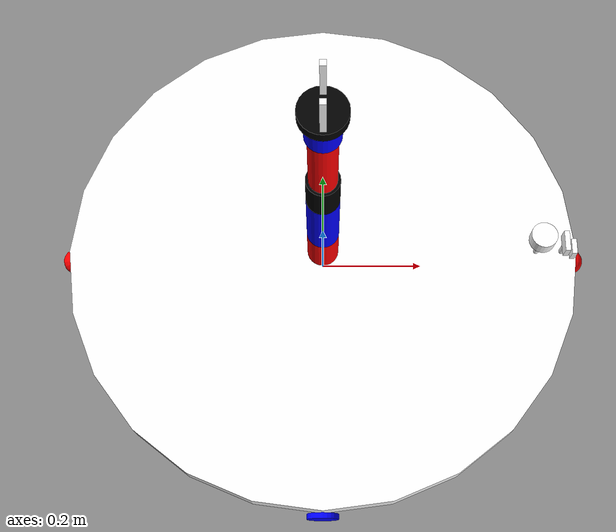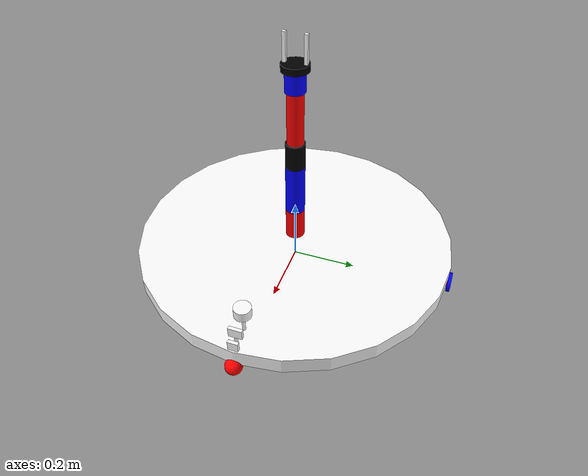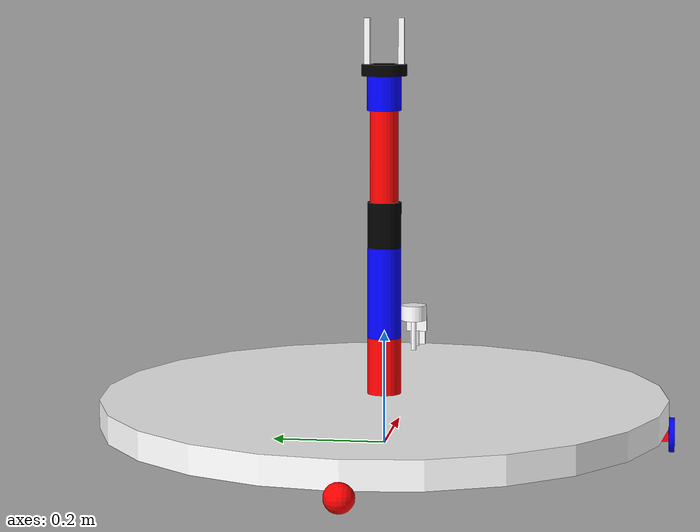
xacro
<?xml version="1.0"?>
<robot name="alpha" xmlns:xacro="http://ros.org/wiki/xacro">
    <!-- Defining the colors used in this robot -->
    <material name="Black">
        <color rgba="0 0 0 1"/>
    </material>

    <material name="White">
        <color rgba="1 1 1 1"/>
    </material>

    <material name="Blue">
        <color rgba="0 0 1 1"/>
    </material>

    <material name="Red">
        <color rgba="1 0 0 1"/>
    </material>

    <!-- Constants -->
    <xacro:property name="M_PI" value="3.14159"/>
    <xacro:property name="left" value="0"/>
    <xacro:property name="right" value="2"/>
    <xacro:property name="back" value="0"/>
    <xacro:property name="front" value="2"/>

    <!-- base link properties -->
    <xacro:property name="base_radius" value="0.5" />
    <xacro:property name="base_len" value="0.05" />

    <!-- motor link properties -->
    <xacro:property name="motor_width" value="0.02" />
    <xacro:property name="motor_len" value="0.05" />

    <!-- wheel link properties -->
    <xacro:property name="wheel_radius" value="0.03" />
    <xacro:property name="wheel_len" value="0.01" />

    <!-- link1 properties -->
    <xacro:property name="link1_width" value="0.03" />
    <xacro:property name="link1_len" value="0.1" />

    <!-- link2 properties -->
    <xacro:property name="link2_width" value="0.03" />
    <xacro:property name="link2_len" value="0.16" />

    <!-- link3 properties -->
    <xacro:property name="link3_width" value="0.03" />
    <xacro:property name="link3_len" value="0.08" />

    <!-- link4 properties -->
    <xacro:property name="link4_width" value="0.025" />
    <xacro:property name="link4_len" value="0.16" />

    <!-- link5 properties -->
    <xacro:property name="link5_width" value="0.03" />
    <xacro:property name="link5_len" value="0.06" />

    <!-- link6 properties -->
    <xacro:property name="link6_width" value="0.04" />
    <xacro:property name="link6_len" value="0.02" />

    <!-- Left gripper -->
    <xacro:property name="left_gripper_len" value="0.08" />
    <xacro:property name="left_gripper_width" value="0.01" />
    <xacro:property name="left_gripper_height" value="0.01" />

    <!-- Right gripper -->
    <xacro:property name="right_gripper_len" value="0.08" />
    <xacro:property name="right_gripper_width" value="0.01" />
    <xacro:property name="right_gripper_height" value="0.01" />

    <!-- camera -->
    <xacro:property name="camera_len" value="0.01" />
    <xacro:property name="camera_width" value="0.03" />
    <xacro:property name="camera_height" value="0.03" />

    <!-- kinect -->
    <xacro:property name="kinect_len" value="0.01" />
    <xacro:property name="kinect_width" value="0.04" />
    <xacro:property name="kinect_height" value="0.03" />

    <!-- laser -->

    <xacro:property name="laser_width" value="0.025" />
    <xacro:property name="laser_len" value="0.03" />

    <!-- platform -->
    <xacro:property name="platform_width" value="0.005" />
    <xacro:property name="platform_len" value="0.03" />

    <!-- Gripper frame -->
    <xacro:property name="grasp_frame_radius" value="0.001" />

    <!-- Inertial matrix macro-->
    <!-- Macro for inertia matrix -->
    <xacro:macro name="sphere_inertial_matrix" params="m r">
        <inertial>
            <mass value="${m}" />
            <inertia ixx="${2*m*r*r/5}" ixy="0" ixz="0"
                iyy="${2*m*r*r/5}" iyz="0"
                izz="${2*m*r*r/5}" />
        </inertial>
    </xacro:macro>

    <xacro:macro name="cylinder_inertial_matrix" params="m r h">
        <inertial>
            <mass value="${m}" />
            <inertia ixx="${m*(3*r*r+h*h)/12}" ixy = "0" ixz = "0"
                iyy="${m*(3*r*r+h*h)/12}" iyz = "0"
                izz="${m*r*r/2}" />
        </inertial>
    </xacro:macro>

    <xacro:macro name="box_inertial_matrix" params="m w h d">
        <inertial>
            <mass value="${m}" />
            <inertia ixx="${m*(h*h+d*d)/12}" ixy = "0" ixz = "0"
                iyy="${m*(w*w+d*d)/12}" iyz = "0"
                izz="${m*(w*w+h*h)/12}" />
        </inertial>
    </xacro:macro>

    <!-- arm link and joint macro -->
    <xacro:macro name="arm_link" params="parent number color link_width link_len z_loc axis_x axis_y axis_z">
        <link name="link_${number}" >
            <visual>
                <origin xyz="0 0 ${link_len/2}" rpy="0 0 0" />
                <geometry>
                    <cylinder radius="${link_width}" length="${link_len}"/>
                </geometry>
                <material name="${color}" />
            </visual>
            <collision>
                <origin xyz="0 0 ${link_len/2}" rpy="0 0 0" />
                <geometry>
                    <cylinder radius="${link_width}" length="${link_len}"/>
                </geometry>
            </collision>
            <xacro:cylinder_inertial_matrix m="1" r="${link_width}" h="${link_len}"/>
        </link>

        <joint name="joint_${number}" type="revolute">
            <parent link="${parent}"/>
            <child link="link_${number}"/>
            <origin xyz="0 0 ${z_loc}" rpy="0 0 0" />
            <axis xyz="${axis_x} ${axis_y} ${axis_z}" />
            <limit effort="300" velocity="10" lower="${-M_PI}" upper="${M_PI}" />
            <dynamics damping="50" friction="1"/>
        </joint>
    </xacro:macro>

    <!-- motor link and joint macro-->
    <!-- loc = 0: left;    loc = 2: right  -->
    <xacro:macro name="motor_link" params="loc color link_width link_len y_loc z_loc">
        <link name="motor_${loc}" >
            <visual>
                <origin xyz="0 0 -${link_width/2}" rpy="0 0 0" />
                <geometry>
                    <box size="${link_width} ${link_len} ${link_width}"/>
                </geometry>
                <material name="${color}" />
            </visual>
            <collision>
                <origin xyz="0 0 -${link_width/2}" rpy="0 0 0" />
                <geometry>
                    <box size="${link_width} ${link_len} ${link_width}"/>
                </geometry>
            </collision>
            <xacro:box_inertial_matrix m="1" w="${link_width}" h="${link_len}" d="${link_width}"/>
        </link>

        <joint name="joint_motor_${loc}" type="fixed">
            <parent link="base_link" />
            <child link="motor_${loc}" />
            <origin xyz="0 ${(loc-1)*y_loc} ${z_loc}" rpy="0 0 0" />
        </joint>
        <gazebo reference="motor_${loc}">
            <material>Gazebo/Black</material>
        </gazebo>
    </xacro:macro>

    <!-- wheel link and joint macro -->
    <xacro:macro name="wheel_link" params="loc color link_width link_len y_loc z_loc">
        <link name="wheel_${loc}" >
            <visual>
                <origin xyz="0 ${(loc-1)*link_len/2} 0" rpy="${M_PI/2} 0 0" />
                <geometry>
                    <cylinder radius="${link_width}" length="${link_len}"/>
                </geometry>
                <material name="${color}" />
            </visual>
            <collision>
                <origin xyz="0 ${(loc-1)*link_len/2} 0" rpy="${M_PI/2} 0 0" />
                <geometry>
                    <cylinder radius="${link_width}" length="${link_len}"/>
                </geometry>
            </collision>
            <xacro:cylinder_inertial_matrix m="1" r="${link_width}" h="${link_len}"/>
        </link>
    </xacro:macro>
    <!-- caster link and joint macro -->
    <xacro:macro name="caster_link" params="loc color link_width x_loc z_loc">
        <link name="caster_${loc}" >
            <visual>
                <origin xyz="0 0 0" rpy="${M_PI/2} 0 0" />
                <geometry>
                    <sphere radius="${link_width-0.005}" />
                </geometry>
                <material name="${color}" />
            </visual>
            <collision>
                <origin xyz="0 0 0" rpy="0 0 0" />
                <geometry>
                    <sphere radius="${link_width-0.005}" />
                </geometry>
            </collision>
            <xacro:sphere_inertial_matrix m="1" r="${link_width}"/>
        </link>

        <joint name="joint_caster_${loc}" type="fixed">
            <parent link="base_link"/>
            <child link="caster_${loc}"/>
            <origin xyz="${(loc-1)*x_loc} 0 ${z_loc}" rpy="0 0 0" />
        </joint>
    </xacro:macro>
    <!-- platform link and joint macro -->
    <xacro:macro name="platform_link" params="loc x_loc">
        <link name="platform_${loc}_link">
            <visual>
                <origin xyz="0 0 ${platform_len*loc/2}"/>
                <geometry>
                    <cylinder radius="${platform_width}" length="${platform_len*loc}"/>
                </geometry>
                <material name="White" />
            </visual>
            <collision>
                <origin xyz="0 0 ${platform_len/2}"/>
                <geometry>
                    <cylinder radius="${platform_width}" length="${platform_len * loc}"/>
                </geometry>
            </collision>
            <xacro:cylinder_inertial_matrix m="1" r="${platform_width}" h="${platform_len}"/>
        </link>

        <joint name="platform_${loc}_joint" type="fixed">
            <parent link="base_link"/>
            <child link="platform_${loc}_link"/>
            <origin xyz="${x_loc} 0 ${wheel_radius+motor_width/2+base_len}" rpy="0 0 0"/>
        </joint>
    </xacro:macro>
    <!-- base_footprint is a fictitious link(frame) that is on the ground right below base_link origin -->

    <link name="base_footprint">
        <visual>
            <origin xyz="0 0 0" rpy="0 0 0" />
            <geometry>
                <box size="0.001 0.001 0.001" />
            </geometry>
        </visual>
    </link>

    <joint name="base_footprint_joint" type="fixed">
        <origin xyz="0 0 0" rpy="0 0 0" />
        <parent link="base_footprint"/>
        <child link="base_link" />
    </joint>

    <!-- base link -->
    <link name="base_link">
        <visual>
            <origin xyz="0 0 ${wheel_radius+motor_width/2+base_len/2}" rpy="0 0 0" />
            <geometry>
                <cylinder radius="${base_radius}" length="${base_len}"/>
            </geometry>
            <material name="White" />
        </visual>
        <collision>
            <origin xyz="0 0 ${wheel_radius+motor_width/2+base_len/2}" rpy="0 0 0" />
            <geometry>
                <cylinder radius="${base_radius}" length="${base_len}"/>
            </geometry>
        </collision>
        <xacro:cylinder_inertial_matrix m="20" r="${base_radius}" h="${base_len}"/>
    </link>
    <!-- platform -->
    <platform_link loc="1" x_loc="${base_radius-0.03}"/>
    <platform_link loc="2" x_loc="${base_radius-0.08}"/>
    <!-- motor link -->
    <motor_link loc="${left}" color="Red" link_width="${motor_width}" link_len="${motor_len}" y_loc="${base_radius-motor_len/2}" z_loc="${wheel_radius+motor_width/2}"/>
    <motor_link loc="${right}" color="Red" link_width="${motor_width}" link_len="${motor_len}" y_loc="${base_radius-motor_len/2}" z_loc="${wheel_radius+motor_width/2}"/>

    <!-- wheel link -->
    <wheel_link loc="${left}" color="Blue" link_width="${wheel_radius}" link_len="${wheel_len}" y_loc="${motor_len/2}" z_loc="${-motor_width/2}"/>
    <wheel_link loc="${right}" color="Blue" link_width="${wheel_radius}" link_len="${wheel_len}" y_loc="${motor_len/2}" z_loc="${-motor_width/2}"/>

    <joint name="base_l_wheel_joint" type="continuous">
        <parent link="motor_0"/>
        <child link="wheel_0"/>
        <origin xyz="0 ${(-1)*motor_len/2} ${-motor_width/2}" rpy="0 0 0" />
        <axis xyz="0 1 0" rpy="0 0 0" />
        <limit effort="100" velocity="100"/>
        <joint_properties damping="0.0" friction="0.0"/>
    </joint>

    <joint name="base_r_wheel_joint" type="continuous">
        <parent link="motor_2"/>
        <child link="wheel_2"/>
        <origin xyz="0 ${motor_len/2} ${-motor_width/2}" rpy="0 0 0" />
        <axis xyz="0 1 0" rpy="0 0 0" />
        <limit effort="100" velocity="100"/>
        <joint_properties damping="0.0" friction="0.0"/>
    </joint>

    <caster_link loc="${back}" color="Red" link_width="${wheel_radius}" x_loc="${base_radius}" z_loc="${wheel_radius}"/>
    <caster_link loc="${front}" color="Red" link_width="${wheel_radius}" x_loc="${base_radius}" z_loc="${wheel_radius}"/>

    <!-- arm link -->
    <arm_link parent="base_link" number="1" color="Red" link_width="${link1_width}" link_len="${link1_len}" z_loc="${wheel_radius+motor_width/2+base_len}" axis_x="0" axis_y="0" axis_z="1"/>
    <arm_link parent="link_1" number="2" color="Blue" link_width="${link2_width}" link_len="${link2_len}" z_loc="${link1_len}" axis_x="0" axis_y="1" axis_z="0"/>
    <arm_link parent="link_2" number="3" color="Black" link_width="${link3_width}" link_len="${link3_len}" z_loc="${link2_len}" axis_x="0" axis_y="1" axis_z="0"/>
    <arm_link parent="link_3" number="4" color="Red" link_width="${link4_width}" link_len="${link4_len}" z_loc="${link3_len}" axis_x="0" axis_y="0" axis_z="1"/>
    <arm_link parent="link_4" number="5" color="Blue" link_width="${link5_width}" link_len="${link5_len}" z_loc="${link4_len}" axis_x="0" axis_y="1" axis_z="0"/>
    <arm_link parent="link_5" number="6" color="Black" link_width="${link6_width}" link_len="${link6_len}" z_loc="${link5_len}" axis_x="0" axis_y="0" axis_z="1"/>

    <!-- Gripper link and joint -->
    <link name="gripper_finger_link1">
        <visual>
            <origin xyz="${left_gripper_len/2} -0.03 0"/>
            <geometry>
                <box size="${left_gripper_len} ${left_gripper_width} ${left_gripper_height}" />
            </geometry>
            <material name="White" />
        </visual>
        <collision>
            <origin xyz="${left_gripper_len/2} -0.03 0"/>
            <geometry>
                <box size="${left_gripper_len} ${left_gripper_width} ${left_gripper_height}" />
            </geometry>
        </collision>
        <xacro:box_inertial_matrix m="1" w="${left_gripper_len}" h="${left_gripper_width}" d="${left_gripper_height}"/>
    </link>

    <link name="gripper_finger_link2">
        <visual>
            <origin xyz="${right_gripper_len/2} 0.03 0"/>
            <geometry>
                <box size="${right_gripper_len} ${right_gripper_width} ${right_gripper_height}" />
            </geometry>
            <material name="White" />
        </visual>
        <collision>
            <origin xyz="${right_gripper_len/2} 0.03 0"/>
            <geometry>
                <box size="${right_gripper_len} ${right_gripper_width} ${right_gripper_height}" />
            </geometry>
        </collision>
        <xacro:box_inertial_matrix m="1" w="${left_gripper_len}" h="${left_gripper_width}" d="${left_gripper_height}"/>
    </link>

    <joint name="finger_joint1" type="prismatic">
        <parent link="link_6"/>
        <child link="gripper_finger_link1"/>
        <origin xyz="0.0 0 ${link6_len}" rpy="${M_PI} ${-M_PI/2} 0"/>
        <axis xyz="0 1 0" />
        <limit effort="100" lower="0" upper="0.05" velocity="1.0"/>
        <dynamics damping="50" friction="1"/>
    </joint>

    <joint name="finger_joint2" type="fixed">
        <parent link="link_6"/>
        <child link="gripper_finger_link2"/>
        <origin xyz="0.0 0 ${link6_len}" rpy="${M_PI} ${-M_PI/2} 0"/>
    </joint>

    <!-- Grasping frame -->
    <link name="grasping_frame"/>

    <joint name="grasping_frame_joint" type="fixed">
      <parent link="link_6"/>
      <child link="grasping_frame"/>
      <origin xyz="0 0 ${link6_len+left_gripper_len}" rpy="${M_PI} ${-M_PI/2} 0"/>
    </joint>
    <!-- ////////////   Sensors  //////////// -->
    <link name="camera_link">
        <visual>
            <origin xyz="0 0 ${camera_height/2}"/>
            <geometry>
                <box size="${camera_len} ${camera_width} ${camera_height}" />
            </geometry>
            <material name="White" />
        </visual>
        <collision>
            <origin xyz="0 0 ${camera_height/2}"/>
            <geometry>
                <box size="${camera_len} ${camera_width} ${camera_height}" />
            </geometry>
        </collision>
        <xacro:box_inertial_matrix m="1" w="${camera_len}" h="${camera_width}" d="${camera_height}"/>
    </link>

    <joint name="camera_joint" type="fixed">
        <parent link="base_link"/>
        <child link="camera_link"/>
        <origin xyz="${base_radius - camera_len} 0 ${wheel_radius+motor_width/2+base_len}" rpy="0 0 0"/>
    </joint>

    <link name="kinect_link">
        <visual>
            <origin xyz="0 0 ${kinect_height/2}"/>
            <geometry>
                <box size="${kinect_len} ${kinect_width} ${kinect_height}" />
            </geometry>
            <material name="White" />
        </visual>
        <collision>
            <origin xyz="0 0 ${kinect_height/2}"/>
            <geometry>
                <box size="${kinect_len} ${kinect_width} ${kinect_height}" />
            </geometry>
        </collision>
        <xacro:box_inertial_matrix m="1" w="${kinect_len}" h="${kinect_width}" d="${kinect_height}"/>
    </link>

    <joint name="kinect_joint" type="fixed">
        <parent link="platform_1_link"/>
        <child link="kinect_link"/>
        <origin xyz="0 0 ${platform_len}" rpy="0 0 0"/>
    </joint>

    <joint name="kinect_optical_joint" type="fixed">
        <origin xyz="0 0 0" rpy="-1.5708 0 -1.5708"/>
        <parent link="kinect_link"/>
        <child link="kinect_frame_optical"/>
    </joint>

    <link name="kinect_frame_optical"/>

    <link name="laser_link">
        <visual>
            <origin xyz="0 0 ${laser_len/2}"/>
            <geometry>
                <cylinder radius="${laser_width}" length="${laser_len}"/>
            </geometry>
            <material name="White" />
        </visual>
        <collision>
            <origin xyz="0 0 ${laser_len/2}"/>
            <geometry>
                <cylinder radius="${laser_width}" length="${laser_len}"/>
            </geometry>
        </collision>
        <xacro:cylinder_inertial_matrix m="1" r="${laser_width}" h="${laser_len}"/>
    </link>

    <joint name="laser_joint" type="fixed">
        <parent link="platform_2_link"/>
        <child link="laser_link"/>
        <origin xyz="0 0 ${platform_len*2}" rpy="0 0 0"/>
    </joint>
    <!-- ////////////   Gazebo   //////////// -->
    <gazebo reference="base_footprint">
        <material>Gazebo/White</material>
        <turnGravityOff>false</turnGravityOff>
    </gazebo>
    <gazebo reference="base_link">
        <material>Gazebo/White</material>
    </gazebo>
    <gazebo reference="link_1">
        <material>Gazebo/Blue</material>
    </gazebo>
    <gazebo reference="link_2">
        <material>Gazebo/White</material>
    </gazebo>
    <gazebo reference="link_3">
        <material>Gazebo/Blue</material>
    </gazebo>
    <gazebo reference="link_4">
        <material>Gazebo/Blue</material>
    </gazebo>
    <gazebo reference="link_5">
        <material>Gazebo/Blue</material>
    </gazebo>
    <gazebo reference="link_6">
        <material>Gazebo/Blue</material>
    </gazebo>
    <gazebo reference="caster_0">
        <material>Gazebo/Red</material>
    </gazebo>
    <gazebo reference="caster_2">
        <material>Gazebo/Red</material>
    </gazebo>
    <gazebo reference="gripper_finger_link1">
        <material>Gazebo/White</material>
    </gazebo>
    <gazebo reference="gripper_finger_link2">
        <material>Gazebo/White</material>
    </gazebo>
    <gazebo reference="camera_link">
        <material>Gazebo/Black</material>
    </gazebo>
    <gazebo reference="kinect_link">
        <material>Gazebo/Red</material>
    </gazebo>
    <gazebo reference="laser_link">
        <material>Gazebo/Blue</material>
    </gazebo>
    <gazebo reference="platform_1_link">
        <material>Gazebo/White</material>
    </gazebo>
    <gazebo reference="platform_2_link">
        <material>Gazebo/White</material>
    </gazebo>

    <!-- Transmissions for ROS Control -->
    <xacro:macro name="transmission_block" params="joint_name">
        <transmission name="tran1">
            <type>transmission_interface/SimpleTransmission</type>
            <joint name="${joint_name}">
                <hardwareInterface>hardware_interface/PositionJointInterface</hardwareInterface>
            </joint>
            <actuator name="motor1">
                <hardwareInterface>hardware_interface/PositionJointInterface</hardwareInterface>
                <mechanicalReduction>1</mechanicalReduction>
            </actuator>
        </transmission>

    </xacro:macro>

    <xacro:transmission_block joint_name="joint_1"/>
    <xacro:transmission_block joint_name="joint_2"/>
    <xacro:transmission_block joint_name="joint_3"/>
    <xacro:transmission_block joint_name="joint_4"/>
    <xacro:transmission_block joint_name="joint_5"/>
    <xacro:transmission_block joint_name="joint_6"/>
    <xacro:transmission_block joint_name="finger_joint1"/>

    <transmission name="base_r_wheel_joint_trans">
        <type>transmission_interface/SimpleTransmission</type>
        <joint name="base_r_wheel_joint">
            <hardwareInterface>hardware_interface/VelocityJointInterface</hardwareInterface>
        </joint>
        <actuator name="motor_act_2">
            <hardwareInterface>hardware_interface/VelocityJointInterface</hardwareInterface>
            <mechanicalReduction>1</mechanicalReduction>
        </actuator>
    </transmission>

    <transmission name="base_l_wheel_joint_trans">
        <type>transmission_interface/SimpleTransmission</type>
        <joint name="base_l_wheel_joint">
            <hardwareInterface>hardware_interface/VelocityJointInterface</hardwareInterface>
        </joint>
        <actuator name="motor_act_0">
            <hardwareInterface>hardware_interface/VelocityJointInterface</hardwareInterface>
            <mechanicalReduction>1</mechanicalReduction>
        </actuator>
    </transmission>

    <!-- Sensors plugin -->
    <gazebo reference="camera_link">
        <sensor type="camera" name="camera_node">
            <update_rate>30.0</update_rate>
            <camera name="head">
                <horizontal_fov>1.3962634</horizontal_fov>
                <image>
                    <width>1280</width>
                    <height>720</height>
                    <format>R8G8B8</format>
                </image>
                <clip>
                    <near>0.02</near>
                    <far>300</far>
                </clip>
                <noise>
                    <type>gaussian</type>
                    <mean>0.0</mean>
                    <stddev>0.007</stddev>
                </noise>
            </camera>
            <plugin name="gazebo_camera" filename="libgazebo_ros_camera.so">
                <alwaysOn>true</alwaysOn>
                <updateRate>0.0</updateRate>
                <cameraName>/camera</cameraName>
                <imageTopicName>image_raw_camera</imageTopicName>
                <cameraInfoTopicName>camera_info</cameraInfoTopicName>
                <frameName>camera_link</frameName>
                <hackBaseline>0.07</hackBaseline>
                <distortionK1>0.0</distortionK1>
                <distortionK2>0.0</distortionK2>
                <distortionK3>0.0</distortionK3>
                <distortionT1>0.0</distortionT1>
                <distortionT2>0.0</distortionT2>
            </plugin>
        </sensor>
    </gazebo>

    <gazebo reference="laser_link">
        <sensor type="ray" name="rplidar">
            <pose>0 0 0 0 0 0</pose>
            <visualize>false</visualize>
            <update_rate>5.5</update_rate>
            <ray>
                <scan>
                  <horizontal>
                    <samples>360</samples>
                    <resolution>1</resolution>
                    <min_angle>-3</min_angle>
                    <max_angle>3</max_angle>
                  </horizontal>
                </scan>
                <range>
                  <min>0.10</min>
                  <max>6.0</max>
                  <resolution>0.01</resolution>
                </range>
                <noise>
                    <type>gaussian</type>
                  <mean>0.0</mean>
                  <stddev>0.01</stddev>
                </noise>
            </ray>
            <plugin name="gazebo_rplidar" filename="libgazebo_ros_laser.so">
                <topicName>/scan</topicName>
                <frameName>laser_link</frameName>
            </plugin>
        </sensor>
    </gazebo>

    <gazebo reference="kinect_link">
        <sensor type="depth" name="camera">
            <always_on>true</always_on>
            <update_rate>20.0</update_rate>
            <camera>
                <horizontal_fov>${60.0*M_PI/180.0}</horizontal_fov>
                <image>
                    <format>R8G8B8</format>
                    <width>640</width>
                    <height>480</height>
                </image>
                <clip>
                    <near>0.05</near>
                    <far>8.0</far>
                </clip>
            </camera>
            <plugin name="kinect_camare_controller" filename="libgazebo_ros_openni_kinect.so">
                <cameraName>kinect</cameraName>
                <alwaysOn>true</alwaysOn>
                <updateRate>10</updateRate>
                <imageTopicName>rgb/image_raw</imageTopicName>
                <depthImageTopicName>depth/image_raw_kinect</depthImageTopicName>
                <pointCloudTopicName>depth/points</pointCloudTopicName>
                <cameraInfoTopicName>rgb/camera_info</cameraInfoTopicName>
                <depthImageCameraInfoTopicName>depth/camera_info</depthImageCameraInfoTopicName>
                <frameName>kinect_frame_optical</frameName>
                <baseline>0.1</baseline>
                <distortion_k1>0.0</distortion_k1>
                <distortion_k2>0.0</distortion_k2>
                <distortion_k3>0.0</distortion_k3>
                <distortion_t1>0.0</distortion_t1>
                <distortion_t2>0.0</distortion_t2>
                <pointCloudCutoff>0.4</pointCloudCutoff>
            </plugin>
        </sensor>
    </gazebo>

    <!-- ros_control plugin -->
    <gazebo>
        <plugin name="gazebo_ros_control" filename="libgazebo_ros_control.so">
            <robotNamespace>/alpha_arm</robotNamespace>
            <robotBaseFrame>base_footprint</robotBaseFrame>
        </plugin>
    </gazebo>

    <gazebo>
        <plugin name="differential_drive_controller" filename="libgazebo_ros_diff_drive.so">
            <rosDebugLevel>Debug</rosDebugLevel>
            <publishWheelTF>true</publishWheelTF>
            <robotNamespace>/alpha_wheel</robotNamespace>
            <publishTf>1</publishTf>
            <publishWheelJointState>true</publishWheelJointState>
            <alwaysOn>true</alwaysOn>
            <updateRate>50.0</updateRate>
            <legacyMode>true</legacyMode>
            <leftJoint>base_l_wheel_joint</leftJoint>
            <rightJoint>base_r_wheel_joint</rightJoint>
            <wheelSeparation>${base_radius*2}</wheelSeparation>
            <wheelDiameter>${2*wheel_radius}</wheelDiameter>
            <broadcastTF>1</broadcastTF>
            <wheelTorque>300</wheelTorque>
            <wheelAcceleration>18</wheelAcceleration>
            <commandTopic>cmd_vel</commandTopic>
            <odometryFrame>odom</odometryFrame>
            <odometryTopic>odom</odometryTopic>
            <robotBaseFrame>base_footprint</robotBaseFrame>
        </plugin>
    </gazebo>

</robot>
